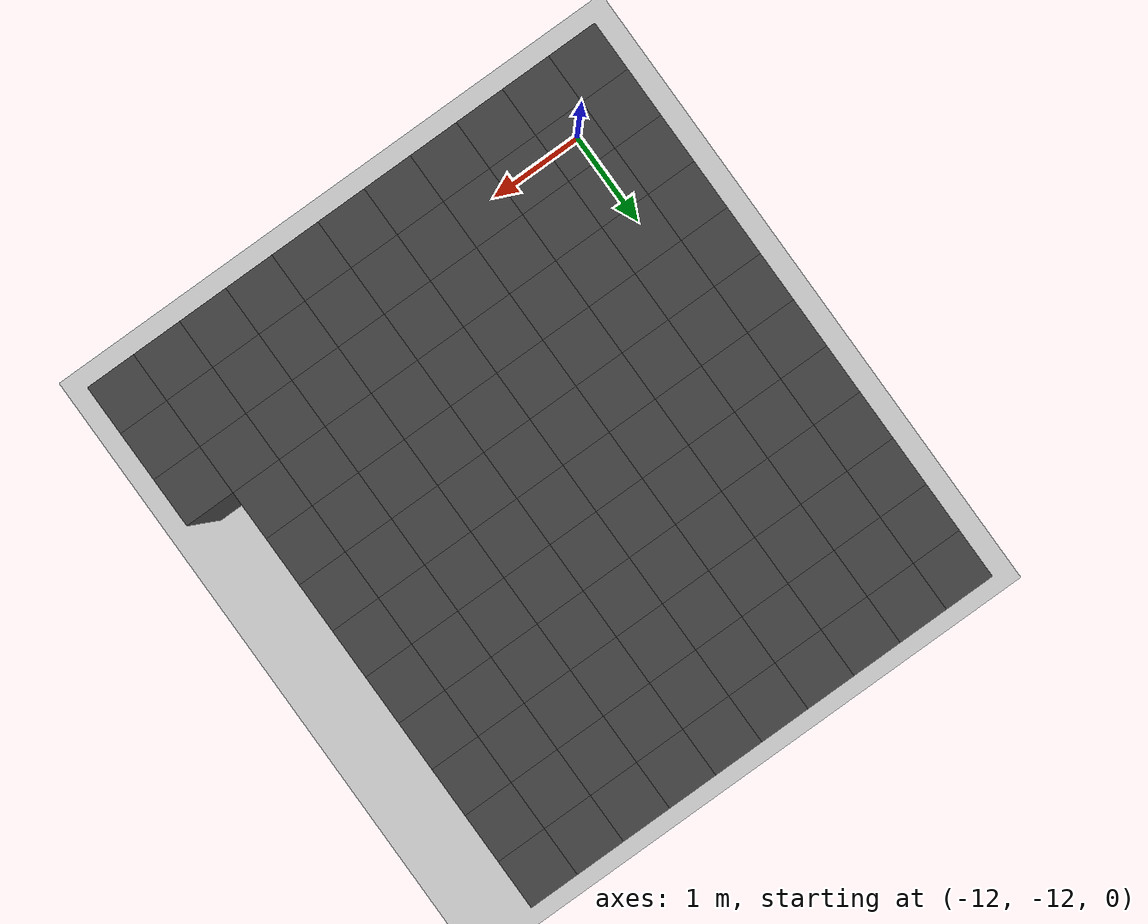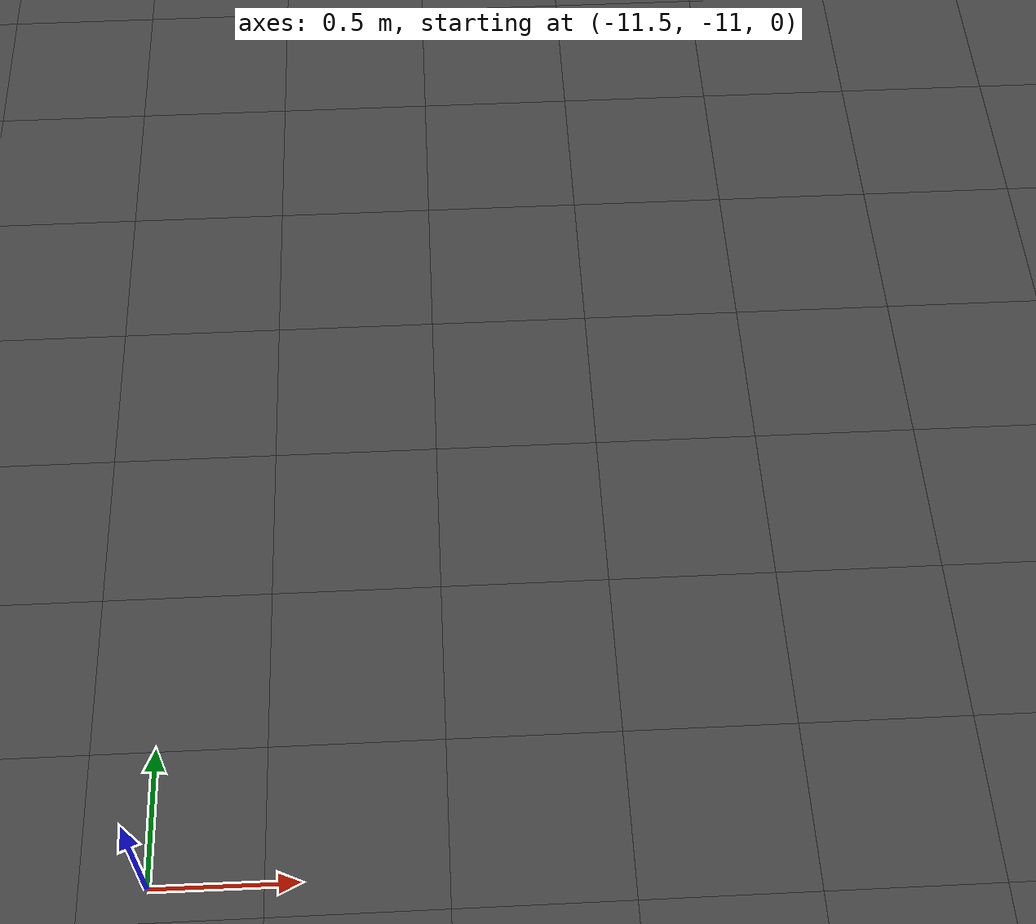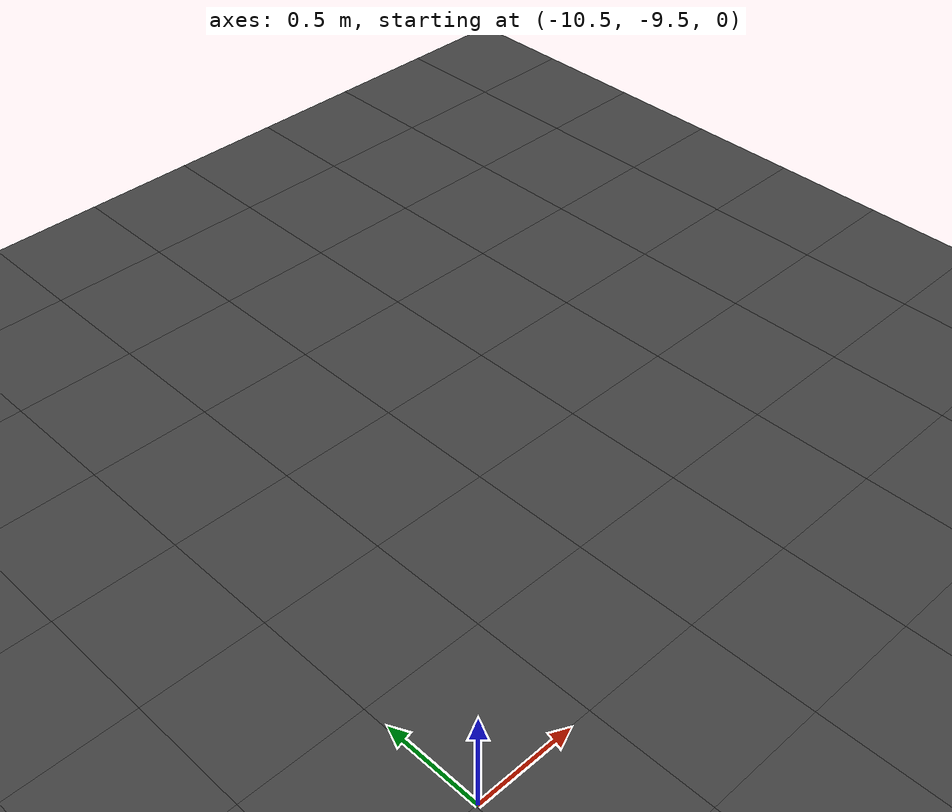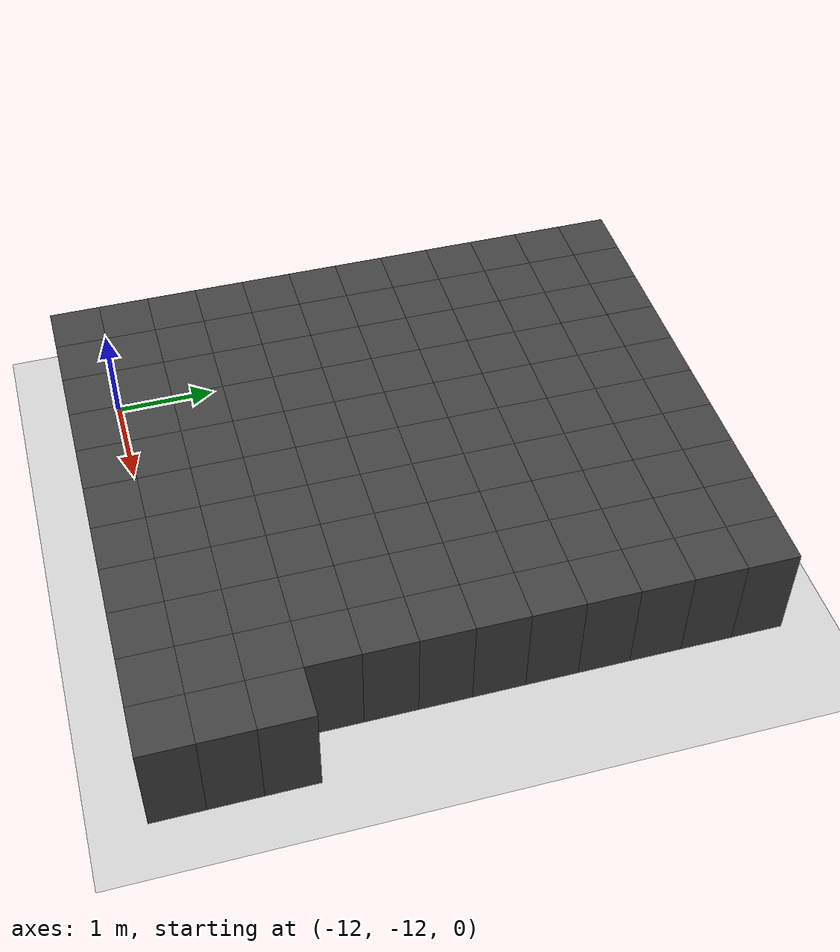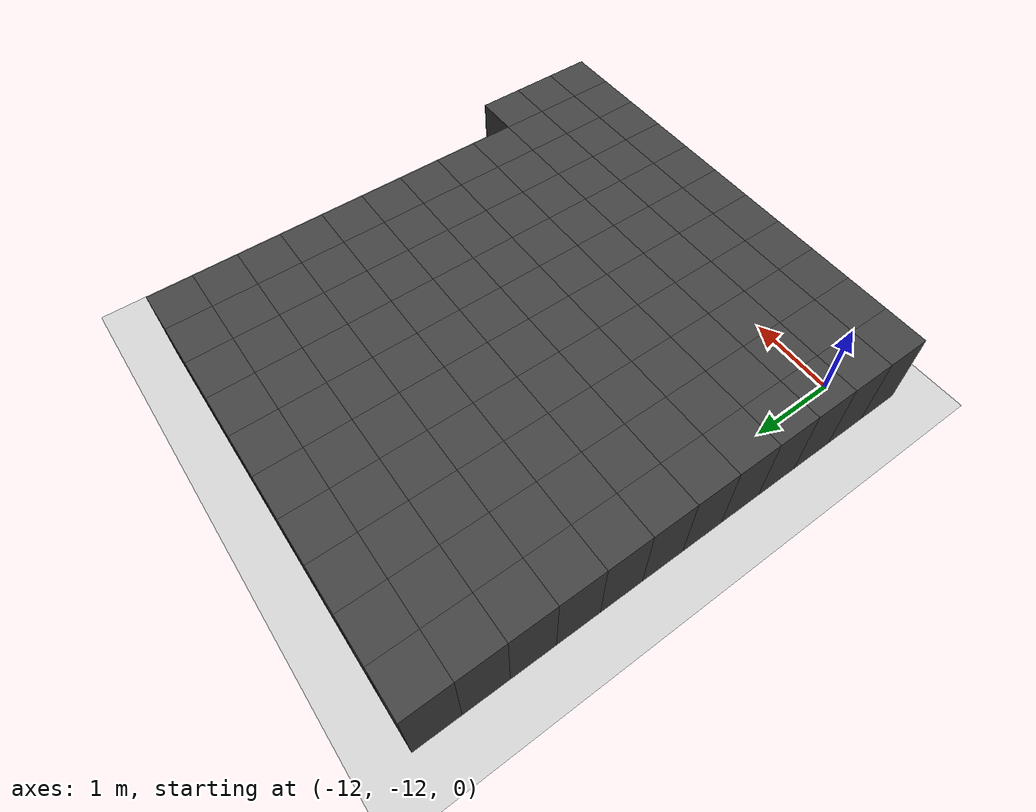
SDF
<sdf version="1.7">
 <world name="map_10726">
  <model name="ground_plane">
   <static>true</static>
   <link name="link">
    <collision name="collision">
     <geometry><plane><normal>0 0 1</normal><size>200 200</size></plane></geometry>
    </collision>
    <visual name="visual">
     <geometry><plane><normal>0 0 1</normal><size>200 200</size></plane></geometry>
     <material><ambient>0.8 0.8 0.8 1</ambient><diffuse>0.8 0.8 0.8 1</diffuse></material>
    </visual>
   </link>
  </model>
  <model name="maze_environment">
   <static>true</static>
   <link name="wall_1596">
    <pose>-12.250 -6.750 0.500 0 0 0</pose>
    <collision name="col"><geometry><box><size>0.5 0.5 1.0</size></box></geometry></collision>
    <visual name="vis">
     <geometry><box><size>0.5 0.5 1.0</size></box></geometry>
     <material><ambient>0.15 0.15 0.15 1</ambient><diffuse>0.25 0.25 0.25 1</diffuse></material>
    </visual>
   </link>
   <link name="wall_1597">
    <pose>-11.750 -6.750 0.500 0 0 0</pose>
    <collision name="col"><geometry><box><size>0.5 0.5 1.0</size></box></geometry></collision>
    <visual name="vis">
     <geometry><box><size>0.5 0.5 1.0</size></box></geometry>
     <material><ambient>0.15 0.15 0.15 1</ambient><diffuse>0.25 0.25 0.25 1</diffuse></material>
    </visual>
   </link>
   <link name="wall_1598">
    <pose>-11.250 -6.750 0.500 0 0 0</pose>
    <collision name="col"><geometry><box><size>0.5 0.5 1.0</size></box></geometry></collision>
    <visual name="vis">
     <geometry><box><size>0.5 0.5 1.0</size></box></geometry>
     <material><ambient>0.15 0.15 0.15 1</ambient><diffuse>0.25 0.25 0.25 1</diffuse></material>
    </visual>
   </link>
   <link name="wall_1599">
    <pose>-10.750 -6.750 0.500 0 0 0</pose>
    <collision name="col"><geometry><box><size>0.5 0.5 1.0</size></box></geometry></collision>
    <visual name="vis">
     <geometry><box><size>0.5 0.5 1.0</size></box></geometry>
     <material><ambient>0.15 0.15 0.15 1</ambient><diffuse>0.25 0.25 0.25 1</diffuse></material>
    </visual>
   </link>
   <link name="wall_1600">
    <pose>-10.250 -6.750 0.500 0 0 0</pose>
    <collision name="col"><geometry><box><size>0.5 0.5 1.0</size></box></geometry></collision>
    <visual name="vis">
     <geometry><box><size>0.5 0.5 1.0</size></box></geometry>
     <material><ambient>0.15 0.15 0.15 1</ambient><diffuse>0.25 0.25 0.25 1</diffuse></material>
    </visual>
   </link>
   <link name="wall_1601">
    <pose>-9.750 -6.750 0.500 0 0 0</pose>
    <collision name="col"><geometry><box><size>0.5 0.5 1.0</size></box></geometry></collision>
    <visual name="vis">
     <geometry><box><size>0.5 0.5 1.0</size></box></geometry>
     <material><ambient>0.15 0.15 0.15 1</ambient><diffuse>0.25 0.25 0.25 1</diffuse></material>
    </visual>
   </link>
   <link name="wall_1602">
    <pose>-9.250 -6.750 0.500 0 0 0</pose>
    <collision name="col"><geometry><box><size>0.5 0.5 1.0</size></box></geometry></collision>
    <visual name="vis">
     <geometry><box><size>0.5 0.5 1.0</size></box></geometry>
     <material><ambient>0.15 0.15 0.15 1</ambient><diffuse>0.25 0.25 0.25 1</diffuse></material>
    </visual>
   </link>
   <link name="wall_1603">
    <pose>-8.750 -6.750 0.500 0 0 0</pose>
    <collision name="col"><geometry><box><size>0.5 0.5 1.0</size></box></geometry></collision>
    <visual name="vis">
     <geometry><box><size>0.5 0.5 1.0</size></box></geometry>
     <material><ambient>0.15 0.15 0.15 1</ambient><diffuse>0.25 0.25 0.25 1</diffuse></material>
    </visual>
   </link>
   <link name="wall_1604">
    <pose>-8.250 -6.750 0.500 0 0 0</pose>
    <collision name="col"><geometry><box><size>0.5 0.5 1.0</size></box></geometry></collision>
    <visual name="vis">
     <geometry><box><size>0.5 0.5 1.0</size></box></geometry>
     <material><ambient>0.15 0.15 0.15 1</ambient><diffuse>0.25 0.25 0.25 1</diffuse></material>
    </visual>
   </link>
   <link name="wall_1605">
    <pose>-7.750 -6.750 0.500 0 0 0</pose>
    <collision name="col"><geometry><box><size>0.5 0.5 1.0</size></box></geometry></collision>
    <visual name="vis">
     <geometry><box><size>0.5 0.5 1.0</size></box></geometry>
     <material><ambient>0.15 0.15 0.15 1</ambient><diffuse>0.25 0.25 0.25 1</diffuse></material>
    </visual>
   </link>
   <link name="wall_1644">
    <pose>-12.250 -7.250 0.500 0 0 0</pose>
    <collision name="col"><geometry><box><size>0.5 0.5 1.0</size></box></geometry></collision>
    <visual name="vis">
     <geometry><box><size>0.5 0.5 1.0</size></box></geometry>
     <material><ambient>0.15 0.15 0.15 1</ambient><diffuse>0.25 0.25 0.25 1</diffuse></material>
    </visual>
   </link>
   <link name="wall_1645">
    <pose>-11.750 -7.250 0.500 0 0 0</pose>
    <collision name="col"><geometry><box><size>0.5 0.5 1.0</size></box></geometry></collision>
    <visual name="vis">
     <geometry><box><size>0.5 0.5 1.0</size></box></geometry>
     <material><ambient>0.15 0.15 0.15 1</ambient><diffuse>0.25 0.25 0.25 1</diffuse></material>
    </visual>
   </link>
   <link name="wall_1646">
    <pose>-11.250 -7.250 0.500 0 0 0</pose>
    <collision name="col"><geometry><box><size>0.5 0.5 1.0</size></box></geometry></collision>
    <visual name="vis">
     <geometry><box><size>0.5 0.5 1.0</size></box></geometry>
     <material><ambient>0.15 0.15 0.15 1</ambient><diffuse>0.25 0.25 0.25 1</diffuse></material>
    </visual>
   </link>
   <link name="wall_1647">
    <pose>-10.750 -7.250 0.500 0 0 0</pose>
    <collision name="col"><geometry><box><size>0.5 0.5 1.0</size></box></geometry></collision>
    <visual name="vis">
     <geometry><box><size>0.5 0.5 1.0</size></box></geometry>
     <material><ambient>0.15 0.15 0.15 1</ambient><diffuse>0.25 0.25 0.25 1</diffuse></material>
    </visual>
   </link>
   <link name="wall_1648">
    <pose>-10.250 -7.250 0.500 0 0 0</pose>
    <collision name="col"><geometry><box><size>0.5 0.5 1.0</size></box></geometry></collision>
    <visual name="vis">
     <geometry><box><size>0.5 0.5 1.0</size></box></geometry>
     <material><ambient>0.15 0.15 0.15 1</ambient><diffuse>0.25 0.25 0.25 1</diffuse></material>
    </visual>
   </link>
   <link name="wall_1649">
    <pose>-9.750 -7.250 0.500 0 0 0</pose>
    <collision name="col"><geometry><box><size>0.5 0.5 1.0</size></box></geometry></collision>
    <visual name="vis">
     <geometry><box><size>0.5 0.5 1.0</size></box></geometry>
     <material><ambient>0.15 0.15 0.15 1</ambient><diffuse>0.25 0.25 0.25 1</diffuse></material>
    </visual>
   </link>
   <link name="wall_1650">
    <pose>-9.250 -7.250 0.500 0 0 0</pose>
    <collision name="col"><geometry><box><size>0.5 0.5 1.0</size></box></geometry></collision>
    <visual name="vis">
     <geometry><box><size>0.5 0.5 1.0</size></box></geometry>
     <material><ambient>0.15 0.15 0.15 1</ambient><diffuse>0.25 0.25 0.25 1</diffuse></material>
    </visual>
   </link>
   <link name="wall_1651">
    <pose>-8.750 -7.250 0.500 0 0 0</pose>
    <collision name="col"><geometry><box><size>0.5 0.5 1.0</size></box></geometry></collision>
    <visual name="vis">
     <geometry><box><size>0.5 0.5 1.0</size></box></geometry>
     <material><ambient>0.15 0.15 0.15 1</ambient><diffuse>0.25 0.25 0.25 1</diffuse></material>
    </visual>
   </link>
   <link name="wall_1652">
    <pose>-8.250 -7.250 0.500 0 0 0</pose>
    <collision name="col"><geometry><box><size>0.5 0.5 1.0</size></box></geometry></collision>
    <visual name="vis">
     <geometry><box><size>0.5 0.5 1.0</size></box></geometry>
     <material><ambient>0.15 0.15 0.15 1</ambient><diffuse>0.25 0.25 0.25 1</diffuse></material>
    </visual>
   </link>
   <link name="wall_1653">
    <pose>-7.750 -7.250 0.500 0 0 0</pose>
    <collision name="col"><geometry><box><size>0.5 0.5 1.0</size></box></geometry></collision>
    <visual name="vis">
     <geometry><box><size>0.5 0.5 1.0</size></box></geometry>
     <material><ambient>0.15 0.15 0.15 1</ambient><diffuse>0.25 0.25 0.25 1</diffuse></material>
    </visual>
   </link>
   <link name="wall_1681">
    <pose>-12.250 -7.750 0.500 0 0 0</pose>
    <collision name="col"><geometry><box><size>0.5 0.5 1.0</size></box></geometry></collision>
    <visual name="vis">
     <geometry><box><size>0.5 0.5 1.0</size></box></geometry>
     <material><ambient>0.15 0.15 0.15 1</ambient><diffuse>0.25 0.25 0.25 1</diffuse></material>
    </visual>
   </link>
   <link name="wall_1682">
    <pose>-11.750 -7.750 0.500 0 0 0</pose>
    <collision name="col"><geometry><box><size>0.5 0.5 1.0</size></box></geometry></collision>
    <visual name="vis">
     <geometry><box><size>0.5 0.5 1.0</size></box></geometry>
     <material><ambient>0.15 0.15 0.15 1</ambient><diffuse>0.25 0.25 0.25 1</diffuse></material>
    </visual>
   </link>
   <link name="wall_1683">
    <pose>-11.250 -7.750 0.500 0 0 0</pose>
    <collision name="col"><geometry><box><size>0.5 0.5 1.0</size></box></geometry></collision>
    <visual name="vis">
     <geometry><box><size>0.5 0.5 1.0</size></box></geometry>
     <material><ambient>0.15 0.15 0.15 1</ambient><diffuse>0.25 0.25 0.25 1</diffuse></material>
    </visual>
   </link>
   <link name="wall_1684">
    <pose>-10.750 -7.750 0.500 0 0 0</pose>
    <collision name="col"><geometry><box><size>0.5 0.5 1.0</size></box></geometry></collision>
    <visual name="vis">
     <geometry><box><size>0.5 0.5 1.0</size></box></geometry>
     <material><ambient>0.15 0.15 0.15 1</ambient><diffuse>0.25 0.25 0.25 1</diffuse></material>
    </visual>
   </link>
   <link name="wall_1685">
    <pose>-10.250 -7.750 0.500 0 0 0</pose>
    <collision name="col"><geometry><box><size>0.5 0.5 1.0</size></box></geometry></collision>
    <visual name="vis">
     <geometry><box><size>0.5 0.5 1.0</size></box></geometry>
     <material><ambient>0.15 0.15 0.15 1</ambient><diffuse>0.25 0.25 0.25 1</diffuse></material>
    </visual>
   </link>
   <link name="wall_1686">
    <pose>-9.750 -7.750 0.500 0 0 0</pose>
    <collision name="col"><geometry><box><size>0.5 0.5 1.0</size></box></geometry></collision>
    <visual name="vis">
     <geometry><box><size>0.5 0.5 1.0</size></box></geometry>
     <material><ambient>0.15 0.15 0.15 1</ambient><diffuse>0.25 0.25 0.25 1</diffuse></material>
    </visual>
   </link>
   <link name="wall_1687">
    <pose>-9.250 -7.750 0.500 0 0 0</pose>
    <collision name="col"><geometry><box><size>0.5 0.5 1.0</size></box></geometry></collision>
    <visual name="vis">
     <geometry><box><size>0.5 0.5 1.0</size></box></geometry>
     <material><ambient>0.15 0.15 0.15 1</ambient><diffuse>0.25 0.25 0.25 1</diffuse></material>
    </visual>
   </link>
   <link name="wall_1688">
    <pose>-8.750 -7.750 0.500 0 0 0</pose>
    <collision name="col"><geometry><box><size>0.5 0.5 1.0</size></box></geometry></collision>
    <visual name="vis">
     <geometry><box><size>0.5 0.5 1.0</size></box></geometry>
     <material><ambient>0.15 0.15 0.15 1</ambient><diffuse>0.25 0.25 0.25 1</diffuse></material>
    </visual>
   </link>
   <link name="wall_1689">
    <pose>-8.250 -7.750 0.500 0 0 0</pose>
    <collision name="col"><geometry><box><size>0.5 0.5 1.0</size></box></geometry></collision>
    <visual name="vis">
     <geometry><box><size>0.5 0.5 1.0</size></box></geometry>
     <material><ambient>0.15 0.15 0.15 1</ambient><diffuse>0.25 0.25 0.25 1</diffuse></material>
    </visual>
   </link>
   <link name="wall_1690">
    <pose>-7.750 -7.750 0.500 0 0 0</pose>
    <collision name="col"><geometry><box><size>0.5 0.5 1.0</size></box></geometry></collision>
    <visual name="vis">
     <geometry><box><size>0.5 0.5 1.0</size></box></geometry>
     <material><ambient>0.15 0.15 0.15 1</ambient><diffuse>0.25 0.25 0.25 1</diffuse></material>
    </visual>
   </link>
   <link name="wall_1718">
    <pose>-12.250 -8.250 0.500 0 0 0</pose>
    <collision name="col"><geometry><box><size>0.5 0.5 1.0</size></box></geometry></collision>
    <visual name="vis">
     <geometry><box><size>0.5 0.5 1.0</size></box></geometry>
     <material><ambient>0.15 0.15 0.15 1</ambient><diffuse>0.25 0.25 0.25 1</diffuse></material>
    </visual>
   </link>
   <link name="wall_1719">
    <pose>-11.750 -8.250 0.500 0 0 0</pose>
    <collision name="col"><geometry><box><size>0.5 0.5 1.0</size></box></geometry></collision>
    <visual name="vis">
     <geometry><box><size>0.5 0.5 1.0</size></box></geometry>
     <material><ambient>0.15 0.15 0.15 1</ambient><diffuse>0.25 0.25 0.25 1</diffuse></material>
    </visual>
   </link>
   <link name="wall_1720">
    <pose>-11.250 -8.250 0.500 0 0 0</pose>
    <collision name="col"><geometry><box><size>0.5 0.5 1.0</size></box></geometry></collision>
    <visual name="vis">
     <geometry><box><size>0.5 0.5 1.0</size></box></geometry>
     <material><ambient>0.15 0.15 0.15 1</ambient><diffuse>0.25 0.25 0.25 1</diffuse></material>
    </visual>
   </link>
   <link name="wall_1721">
    <pose>-10.750 -8.250 0.500 0 0 0</pose>
    <collision name="col"><geometry><box><size>0.5 0.5 1.0</size></box></geometry></collision>
    <visual name="vis">
     <geometry><box><size>0.5 0.5 1.0</size></box></geometry>
     <material><ambient>0.15 0.15 0.15 1</ambient><diffuse>0.25 0.25 0.25 1</diffuse></material>
    </visual>
   </link>
   <link name="wall_1722">
    <pose>-10.250 -8.250 0.500 0 0 0</pose>
    <collision name="col"><geometry><box><size>0.5 0.5 1.0</size></box></geometry></collision>
    <visual name="vis">
     <geometry><box><size>0.5 0.5 1.0</size></box></geometry>
     <material><ambient>0.15 0.15 0.15 1</ambient><diffuse>0.25 0.25 0.25 1</diffuse></material>
    </visual>
   </link>
   <link name="wall_1723">
    <pose>-9.750 -8.250 0.500 0 0 0</pose>
    <collision name="col"><geometry><box><size>0.5 0.5 1.0</size></box></geometry></collision>
    <visual name="vis">
     <geometry><box><size>0.5 0.5 1.0</size></box></geometry>
     <material><ambient>0.15 0.15 0.15 1</ambient><diffuse>0.25 0.25 0.25 1</diffuse></material>
    </visual>
   </link>
   <link name="wall_1724">
    <pose>-9.250 -8.250 0.500 0 0 0</pose>
    <collision name="col"><geometry><box><size>0.5 0.5 1.0</size></box></geometry></collision>
    <visual name="vis">
     <geometry><box><size>0.5 0.5 1.0</size></box></geometry>
     <material><ambient>0.15 0.15 0.15 1</ambient><diffuse>0.25 0.25 0.25 1</diffuse></material>
    </visual>
   </link>
   <link name="wall_1725">
    <pose>-8.750 -8.250 0.500 0 0 0</pose>
    <collision name="col"><geometry><box><size>0.5 0.5 1.0</size></box></geometry></collision>
    <visual name="vis">
     <geometry><box><size>0.5 0.5 1.0</size></box></geometry>
     <material><ambient>0.15 0.15 0.15 1</ambient><diffuse>0.25 0.25 0.25 1</diffuse></material>
    </visual>
   </link>
   <link name="wall_1726">
    <pose>-8.250 -8.250 0.500 0 0 0</pose>
    <collision name="col"><geometry><box><size>0.5 0.5 1.0</size></box></geometry></collision>
    <visual name="vis">
     <geometry><box><size>0.5 0.5 1.0</size></box></geometry>
     <material><ambient>0.15 0.15 0.15 1</ambient><diffuse>0.25 0.25 0.25 1</diffuse></material>
    </visual>
   </link>
   <link name="wall_1727">
    <pose>-7.750 -8.250 0.500 0 0 0</pose>
    <collision name="col"><geometry><box><size>0.5 0.5 1.0</size></box></geometry></collision>
    <visual name="vis">
     <geometry><box><size>0.5 0.5 1.0</size></box></geometry>
     <material><ambient>0.15 0.15 0.15 1</ambient><diffuse>0.25 0.25 0.25 1</diffuse></material>
    </visual>
   </link>
   <link name="wall_1755">
    <pose>-12.250 -8.750 0.500 0 0 0</pose>
    <collision name="col"><geometry><box><size>0.5 0.5 1.0</size></box></geometry></collision>
    <visual name="vis">
     <geometry><box><size>0.5 0.5 1.0</size></box></geometry>
     <material><ambient>0.15 0.15 0.15 1</ambient><diffuse>0.25 0.25 0.25 1</diffuse></material>
    </visual>
   </link>
   <link name="wall_1756">
    <pose>-11.750 -8.750 0.500 0 0 0</pose>
    <collision name="col"><geometry><box><size>0.5 0.5 1.0</size></box></geometry></collision>
    <visual name="vis">
     <geometry><box><size>0.5 0.5 1.0</size></box></geometry>
     <material><ambient>0.15 0.15 0.15 1</ambient><diffuse>0.25 0.25 0.25 1</diffuse></material>
    </visual>
   </link>
   <link name="wall_1757">
    <pose>-11.250 -8.750 0.500 0 0 0</pose>
    <collision name="col"><geometry><box><size>0.5 0.5 1.0</size></box></geometry></collision>
    <visual name="vis">
     <geometry><box><size>0.5 0.5 1.0</size></box></geometry>
     <material><ambient>0.15 0.15 0.15 1</ambient><diffuse>0.25 0.25 0.25 1</diffuse></material>
    </visual>
   </link>
   <link name="wall_1758">
    <pose>-10.750 -8.750 0.500 0 0 0</pose>
    <collision name="col"><geometry><box><size>0.5 0.5 1.0</size></box></geometry></collision>
    <visual name="vis">
     <geometry><box><size>0.5 0.5 1.0</size></box></geometry>
     <material><ambient>0.15 0.15 0.15 1</ambient><diffuse>0.25 0.25 0.25 1</diffuse></material>
    </visual>
   </link>
   <link name="wall_1759">
    <pose>-10.250 -8.750 0.500 0 0 0</pose>
    <collision name="col"><geometry><box><size>0.5 0.5 1.0</size></box></geometry></collision>
    <visual name="vis">
     <geometry><box><size>0.5 0.5 1.0</size></box></geometry>
     <material><ambient>0.15 0.15 0.15 1</ambient><diffuse>0.25 0.25 0.25 1</diffuse></material>
    </visual>
   </link>
   <link name="wall_1760">
    <pose>-9.750 -8.750 0.500 0 0 0</pose>
    <collision name="col"><geometry><box><size>0.5 0.5 1.0</size></box></geometry></collision>
    <visual name="vis">
     <geometry><box><size>0.5 0.5 1.0</size></box></geometry>
     <material><ambient>0.15 0.15 0.15 1</ambient><diffuse>0.25 0.25 0.25 1</diffuse></material>
    </visual>
   </link>
   <link name="wall_1761">
    <pose>-9.250 -8.750 0.500 0 0 0</pose>
    <collision name="col"><geometry><box><size>0.5 0.5 1.0</size></box></geometry></collision>
    <visual name="vis">
     <geometry><box><size>0.5 0.5 1.0</size></box></geometry>
     <material><ambient>0.15 0.15 0.15 1</ambient><diffuse>0.25 0.25 0.25 1</diffuse></material>
    </visual>
   </link>
   <link name="wall_1762">
    <pose>-8.750 -8.750 0.500 0 0 0</pose>
    <collision name="col"><geometry><box><size>0.5 0.5 1.0</size></box></geometry></collision>
    <visual name="vis">
     <geometry><box><size>0.5 0.5 1.0</size></box></geometry>
     <material><ambient>0.15 0.15 0.15 1</ambient><diffuse>0.25 0.25 0.25 1</diffuse></material>
    </visual>
   </link>
   <link name="wall_1763">
    <pose>-8.250 -8.750 0.500 0 0 0</pose>
    <collision name="col"><geometry><box><size>0.5 0.5 1.0</size></box></geometry></collision>
    <visual name="vis">
     <geometry><box><size>0.5 0.5 1.0</size></box></geometry>
     <material><ambient>0.15 0.15 0.15 1</ambient><diffuse>0.25 0.25 0.25 1</diffuse></material>
    </visual>
   </link>
   <link name="wall_1764">
    <pose>-7.750 -8.750 0.500 0 0 0</pose>
    <collision name="col"><geometry><box><size>0.5 0.5 1.0</size></box></geometry></collision>
    <visual name="vis">
     <geometry><box><size>0.5 0.5 1.0</size></box></geometry>
     <material><ambient>0.15 0.15 0.15 1</ambient><diffuse>0.25 0.25 0.25 1</diffuse></material>
    </visual>
   </link>
   <link name="wall_1791">
    <pose>-12.250 -9.250 0.500 0 0 0</pose>
    <collision name="col"><geometry><box><size>0.5 0.5 1.0</size></box></geometry></collision>
    <visual name="vis">
     <geometry><box><size>0.5 0.5 1.0</size></box></geometry>
     <material><ambient>0.15 0.15 0.15 1</ambient><diffuse>0.25 0.25 0.25 1</diffuse></material>
    </visual>
   </link>
   <link name="wall_1792">
    <pose>-11.750 -9.250 0.500 0 0 0</pose>
    <collision name="col"><geometry><box><size>0.5 0.5 1.0</size></box></geometry></collision>
    <visual name="vis">
     <geometry><box><size>0.5 0.5 1.0</size></box></geometry>
     <material><ambient>0.15 0.15 0.15 1</ambient><diffuse>0.25 0.25 0.25 1</diffuse></material>
    </visual>
   </link>
   <link name="wall_1793">
    <pose>-11.250 -9.250 0.500 0 0 0</pose>
    <collision name="col"><geometry><box><size>0.5 0.5 1.0</size></box></geometry></collision>
    <visual name="vis">
     <geometry><box><size>0.5 0.5 1.0</size></box></geometry>
     <material><ambient>0.15 0.15 0.15 1</ambient><diffuse>0.25 0.25 0.25 1</diffuse></material>
    </visual>
   </link>
   <link name="wall_1794">
    <pose>-10.750 -9.250 0.500 0 0 0</pose>
    <collision name="col"><geometry><box><size>0.5 0.5 1.0</size></box></geometry></collision>
    <visual name="vis">
     <geometry><box><size>0.5 0.5 1.0</size></box></geometry>
     <material><ambient>0.15 0.15 0.15 1</ambient><diffuse>0.25 0.25 0.25 1</diffuse></material>
    </visual>
   </link>
   <link name="wall_1795">
    <pose>-10.250 -9.250 0.500 0 0 0</pose>
    <collision name="col"><geometry><box><size>0.5 0.5 1.0</size></box></geometry></collision>
    <visual name="vis">
     <geometry><box><size>0.5 0.5 1.0</size></box></geometry>
     <material><ambient>0.15 0.15 0.15 1</ambient><diffuse>0.25 0.25 0.25 1</diffuse></material>
    </visual>
   </link>
   <link name="wall_1796">
    <pose>-9.750 -9.250 0.500 0 0 0</pose>
    <collision name="col"><geometry><box><size>0.5 0.5 1.0</size></box></geometry></collision>
    <visual name="vis">
     <geometry><box><size>0.5 0.5 1.0</size></box></geometry>
     <material><ambient>0.15 0.15 0.15 1</ambient><diffuse>0.25 0.25 0.25 1</diffuse></material>
    </visual>
   </link>
   <link name="wall_1797">
    <pose>-9.250 -9.250 0.500 0 0 0</pose>
    <collision name="col"><geometry><box><size>0.5 0.5 1.0</size></box></geometry></collision>
    <visual name="vis">
     <geometry><box><size>0.5 0.5 1.0</size></box></geometry>
     <material><ambient>0.15 0.15 0.15 1</ambient><diffuse>0.25 0.25 0.25 1</diffuse></material>
    </visual>
   </link>
   <link name="wall_1798">
    <pose>-8.750 -9.250 0.500 0 0 0</pose>
    <collision name="col"><geometry><box><size>0.5 0.5 1.0</size></box></geometry></collision>
    <visual name="vis">
     <geometry><box><size>0.5 0.5 1.0</size></box></geometry>
     <material><ambient>0.15 0.15 0.15 1</ambient><diffuse>0.25 0.25 0.25 1</diffuse></material>
    </visual>
   </link>
   <link name="wall_1799">
    <pose>-8.250 -9.250 0.500 0 0 0</pose>
    <collision name="col"><geometry><box><size>0.5 0.5 1.0</size></box></geometry></collision>
    <visual name="vis">
     <geometry><box><size>0.5 0.5 1.0</size></box></geometry>
     <material><ambient>0.15 0.15 0.15 1</ambient><diffuse>0.25 0.25 0.25 1</diffuse></material>
    </visual>
   </link>
   <link name="wall_1800">
    <pose>-7.750 -9.250 0.500 0 0 0</pose>
    <collision name="col"><geometry><box><size>0.5 0.5 1.0</size></box></geometry></collision>
    <visual name="vis">
     <geometry><box><size>0.5 0.5 1.0</size></box></geometry>
     <material><ambient>0.15 0.15 0.15 1</ambient><diffuse>0.25 0.25 0.25 1</diffuse></material>
    </visual>
   </link>
   <link name="wall_1829">
    <pose>-12.250 -9.750 0.500 0 0 0</pose>
    <collision name="col"><geometry><box><size>0.5 0.5 1.0</size></box></geometry></collision>
    <visual name="vis">
     <geometry><box><size>0.5 0.5 1.0</size></box></geometry>
     <material><ambient>0.15 0.15 0.15 1</ambient><diffuse>0.25 0.25 0.25 1</diffuse></material>
    </visual>
   </link>
   <link name="wall_1830">
    <pose>-11.750 -9.750 0.500 0 0 0</pose>
    <collision name="col"><geometry><box><size>0.5 0.5 1.0</size></box></geometry></collision>
    <visual name="vis">
     <geometry><box><size>0.5 0.5 1.0</size></box></geometry>
     <material><ambient>0.15 0.15 0.15 1</ambient><diffuse>0.25 0.25 0.25 1</diffuse></material>
    </visual>
   </link>
   <link name="wall_1831">
    <pose>-11.250 -9.750 0.500 0 0 0</pose>
    <collision name="col"><geometry><box><size>0.5 0.5 1.0</size></box></geometry></collision>
    <visual name="vis">
     <geometry><box><size>0.5 0.5 1.0</size></box></geometry>
     <material><ambient>0.15 0.15 0.15 1</ambient><diffuse>0.25 0.25 0.25 1</diffuse></material>
    </visual>
   </link>
   <link name="wall_1832">
    <pose>-10.750 -9.750 0.500 0 0 0</pose>
    <collision name="col"><geometry><box><size>0.5 0.5 1.0</size></box></geometry></collision>
    <visual name="vis">
     <geometry><box><size>0.5 0.5 1.0</size></box></geometry>
     <material><ambient>0.15 0.15 0.15 1</ambient><diffuse>0.25 0.25 0.25 1</diffuse></material>
    </visual>
   </link>
   <link name="wall_1833">
    <pose>-10.250 -9.750 0.500 0 0 0</pose>
    <collision name="col"><geometry><box><size>0.5 0.5 1.0</size></box></geometry></collision>
    <visual name="vis">
     <geometry><box><size>0.5 0.5 1.0</size></box></geometry>
     <material><ambient>0.15 0.15 0.15 1</ambient><diffuse>0.25 0.25 0.25 1</diffuse></material>
    </visual>
   </link>
   <link name="wall_1834">
    <pose>-9.750 -9.750 0.500 0 0 0</pose>
    <collision name="col"><geometry><box><size>0.5 0.5 1.0</size></box></geometry></collision>
    <visual name="vis">
     <geometry><box><size>0.5 0.5 1.0</size></box></geometry>
     <material><ambient>0.15 0.15 0.15 1</ambient><diffuse>0.25 0.25 0.25 1</diffuse></material>
    </visual>
   </link>
   <link name="wall_1835">
    <pose>-9.250 -9.750 0.500 0 0 0</pose>
    <collision name="col"><geometry><box><size>0.5 0.5 1.0</size></box></geometry></collision>
    <visual name="vis">
     <geometry><box><size>0.5 0.5 1.0</size></box></geometry>
     <material><ambient>0.15 0.15 0.15 1</ambient><diffuse>0.25 0.25 0.25 1</diffuse></material>
    </visual>
   </link>
   <link name="wall_1836">
    <pose>-8.750 -9.750 0.500 0 0 0</pose>
    <collision name="col"><geometry><box><size>0.5 0.5 1.0</size></box></geometry></collision>
    <visual name="vis">
     <geometry><box><size>0.5 0.5 1.0</size></box></geometry>
     <material><ambient>0.15 0.15 0.15 1</ambient><diffuse>0.25 0.25 0.25 1</diffuse></material>
    </visual>
   </link>
   <link name="wall_1837">
    <pose>-8.250 -9.750 0.500 0 0 0</pose>
    <collision name="col"><geometry><box><size>0.5 0.5 1.0</size></box></geometry></collision>
    <visual name="vis">
     <geometry><box><size>0.5 0.5 1.0</size></box></geometry>
     <material><ambient>0.15 0.15 0.15 1</ambient><diffuse>0.25 0.25 0.25 1</diffuse></material>
    </visual>
   </link>
   <link name="wall_1838">
    <pose>-7.750 -9.750 0.500 0 0 0</pose>
    <collision name="col"><geometry><box><size>0.5 0.5 1.0</size></box></geometry></collision>
    <visual name="vis">
     <geometry><box><size>0.5 0.5 1.0</size></box></geometry>
     <material><ambient>0.15 0.15 0.15 1</ambient><diffuse>0.25 0.25 0.25 1</diffuse></material>
    </visual>
   </link>
   <link name="wall_1867">
    <pose>-12.250 -10.250 0.500 0 0 0</pose>
    <collision name="col"><geometry><box><size>0.5 0.5 1.0</size></box></geometry></collision>
    <visual name="vis">
     <geometry><box><size>0.5 0.5 1.0</size></box></geometry>
     <material><ambient>0.15 0.15 0.15 1</ambient><diffuse>0.25 0.25 0.25 1</diffuse></material>
    </visual>
   </link>
   <link name="wall_1868">
    <pose>-11.750 -10.250 0.500 0 0 0</pose>
    <collision name="col"><geometry><box><size>0.5 0.5 1.0</size></box></geometry></collision>
    <visual name="vis">
     <geometry><box><size>0.5 0.5 1.0</size></box></geometry>
     <material><ambient>0.15 0.15 0.15 1</ambient><diffuse>0.25 0.25 0.25 1</diffuse></material>
    </visual>
   </link>
   <link name="wall_1869">
    <pose>-11.250 -10.250 0.500 0 0 0</pose>
    <collision name="col"><geometry><box><size>0.5 0.5 1.0</size></box></geometry></collision>
    <visual name="vis">
     <geometry><box><size>0.5 0.5 1.0</size></box></geometry>
     <material><ambient>0.15 0.15 0.15 1</ambient><diffuse>0.25 0.25 0.25 1</diffuse></material>
    </visual>
   </link>
   <link name="wall_1870">
    <pose>-10.750 -10.250 0.500 0 0 0</pose>
    <collision name="col"><geometry><box><size>0.5 0.5 1.0</size></box></geometry></collision>
    <visual name="vis">
     <geometry><box><size>0.5 0.5 1.0</size></box></geometry>
     <material><ambient>0.15 0.15 0.15 1</ambient><diffuse>0.25 0.25 0.25 1</diffuse></material>
    </visual>
   </link>
   <link name="wall_1871">
    <pose>-10.250 -10.250 0.500 0 0 0</pose>
    <collision name="col"><geometry><box><size>0.5 0.5 1.0</size></box></geometry></collision>
    <visual name="vis">
     <geometry><box><size>0.5 0.5 1.0</size></box></geometry>
     <material><ambient>0.15 0.15 0.15 1</ambient><diffuse>0.25 0.25 0.25 1</diffuse></material>
    </visual>
   </link>
   <link name="wall_1872">
    <pose>-9.750 -10.250 0.500 0 0 0</pose>
    <collision name="col"><geometry><box><size>0.5 0.5 1.0</size></box></geometry></collision>
    <visual name="vis">
     <geometry><box><size>0.5 0.5 1.0</size></box></geometry>
     <material><ambient>0.15 0.15 0.15 1</ambient><diffuse>0.25 0.25 0.25 1</diffuse></material>
    </visual>
   </link>
   <link name="wall_1873">
    <pose>-9.250 -10.250 0.500 0 0 0</pose>
    <collision name="col"><geometry><box><size>0.5 0.5 1.0</size></box></geometry></collision>
    <visual name="vis">
     <geometry><box><size>0.5 0.5 1.0</size></box></geometry>
     <material><ambient>0.15 0.15 0.15 1</ambient><diffuse>0.25 0.25 0.25 1</diffuse></material>
    </visual>
   </link>
   <link name="wall_1874">
    <pose>-8.750 -10.250 0.500 0 0 0</pose>
    <collision name="col"><geometry><box><size>0.5 0.5 1.0</size></box></geometry></collision>
    <visual name="vis">
     <geometry><box><size>0.5 0.5 1.0</size></box></geometry>
     <material><ambient>0.15 0.15 0.15 1</ambient><diffuse>0.25 0.25 0.25 1</diffuse></material>
    </visual>
   </link>
   <link name="wall_1875">
    <pose>-8.250 -10.250 0.500 0 0 0</pose>
    <collision name="col"><geometry><box><size>0.5 0.5 1.0</size></box></geometry></collision>
    <visual name="vis">
     <geometry><box><size>0.5 0.5 1.0</size></box></geometry>
     <material><ambient>0.15 0.15 0.15 1</ambient><diffuse>0.25 0.25 0.25 1</diffuse></material>
    </visual>
   </link>
   <link name="wall_1876">
    <pose>-7.750 -10.250 0.500 0 0 0</pose>
    <collision name="col"><geometry><box><size>0.5 0.5 1.0</size></box></geometry></collision>
    <visual name="vis">
     <geometry><box><size>0.5 0.5 1.0</size></box></geometry>
     <material><ambient>0.15 0.15 0.15 1</ambient><diffuse>0.25 0.25 0.25 1</diffuse></material>
    </visual>
   </link>
   <link name="wall_1913">
    <pose>-12.250 -10.750 0.500 0 0 0</pose>
    <collision name="col"><geometry><box><size>0.5 0.5 1.0</size></box></geometry></collision>
    <visual name="vis">
     <geometry><box><size>0.5 0.5 1.0</size></box></geometry>
     <material><ambient>0.15 0.15 0.15 1</ambient><diffuse>0.25 0.25 0.25 1</diffuse></material>
    </visual>
   </link>
   <link name="wall_1914">
    <pose>-11.750 -10.750 0.500 0 0 0</pose>
    <collision name="col"><geometry><box><size>0.5 0.5 1.0</size></box></geometry></collision>
    <visual name="vis">
     <geometry><box><size>0.5 0.5 1.0</size></box></geometry>
     <material><ambient>0.15 0.15 0.15 1</ambient><diffuse>0.25 0.25 0.25 1</diffuse></material>
    </visual>
   </link>
   <link name="wall_1915">
    <pose>-11.250 -10.750 0.500 0 0 0</pose>
    <collision name="col"><geometry><box><size>0.5 0.5 1.0</size></box></geometry></collision>
    <visual name="vis">
     <geometry><box><size>0.5 0.5 1.0</size></box></geometry>
     <material><ambient>0.15 0.15 0.15 1</ambient><diffuse>0.25 0.25 0.25 1</diffuse></material>
    </visual>
   </link>
   <link name="wall_1916">
    <pose>-10.750 -10.750 0.500 0 0 0</pose>
    <collision name="col"><geometry><box><size>0.5 0.5 1.0</size></box></geometry></collision>
    <visual name="vis">
     <geometry><box><size>0.5 0.5 1.0</size></box></geometry>
     <material><ambient>0.15 0.15 0.15 1</ambient><diffuse>0.25 0.25 0.25 1</diffuse></material>
    </visual>
   </link>
   <link name="wall_1917">
    <pose>-10.250 -10.750 0.500 0 0 0</pose>
    <collision name="col"><geometry><box><size>0.5 0.5 1.0</size></box></geometry></collision>
    <visual name="vis">
     <geometry><box><size>0.5 0.5 1.0</size></box></geometry>
     <material><ambient>0.15 0.15 0.15 1</ambient><diffuse>0.25 0.25 0.25 1</diffuse></material>
    </visual>
   </link>
   <link name="wall_1918">
    <pose>-9.750 -10.750 0.500 0 0 0</pose>
    <collision name="col"><geometry><box><size>0.5 0.5 1.0</size></box></geometry></collision>
    <visual name="vis">
     <geometry><box><size>0.5 0.5 1.0</size></box></geometry>
     <material><ambient>0.15 0.15 0.15 1</ambient><diffuse>0.25 0.25 0.25 1</diffuse></material>
    </visual>
   </link>
   <link name="wall_1919">
    <pose>-9.250 -10.750 0.500 0 0 0</pose>
    <collision name="col"><geometry><box><size>0.5 0.5 1.0</size></box></geometry></collision>
    <visual name="vis">
     <geometry><box><size>0.5 0.5 1.0</size></box></geometry>
     <material><ambient>0.15 0.15 0.15 1</ambient><diffuse>0.25 0.25 0.25 1</diffuse></material>
    </visual>
   </link>
   <link name="wall_1920">
    <pose>-8.750 -10.750 0.500 0 0 0</pose>
    <collision name="col"><geometry><box><size>0.5 0.5 1.0</size></box></geometry></collision>
    <visual name="vis">
     <geometry><box><size>0.5 0.5 1.0</size></box></geometry>
     <material><ambient>0.15 0.15 0.15 1</ambient><diffuse>0.25 0.25 0.25 1</diffuse></material>
    </visual>
   </link>
   <link name="wall_1921">
    <pose>-8.250 -10.750 0.500 0 0 0</pose>
    <collision name="col"><geometry><box><size>0.5 0.5 1.0</size></box></geometry></collision>
    <visual name="vis">
     <geometry><box><size>0.5 0.5 1.0</size></box></geometry>
     <material><ambient>0.15 0.15 0.15 1</ambient><diffuse>0.25 0.25 0.25 1</diffuse></material>
    </visual>
   </link>
   <link name="wall_1922">
    <pose>-7.750 -10.750 0.500 0 0 0</pose>
    <collision name="col"><geometry><box><size>0.5 0.5 1.0</size></box></geometry></collision>
    <visual name="vis">
     <geometry><box><size>0.5 0.5 1.0</size></box></geometry>
     <material><ambient>0.15 0.15 0.15 1</ambient><diffuse>0.25 0.25 0.25 1</diffuse></material>
    </visual>
   </link>
   <link name="wall_1959">
    <pose>-12.250 -11.250 0.500 0 0 0</pose>
    <collision name="col"><geometry><box><size>0.5 0.5 1.0</size></box></geometry></collision>
    <visual name="vis">
     <geometry><box><size>0.5 0.5 1.0</size></box></geometry>
     <material><ambient>0.15 0.15 0.15 1</ambient><diffuse>0.25 0.25 0.25 1</diffuse></material>
    </visual>
   </link>
   <link name="wall_1960">
    <pose>-11.750 -11.250 0.500 0 0 0</pose>
    <collision name="col"><geometry><box><size>0.5 0.5 1.0</size></box></geometry></collision>
    <visual name="vis">
     <geometry><box><size>0.5 0.5 1.0</size></box></geometry>
     <material><ambient>0.15 0.15 0.15 1</ambient><diffuse>0.25 0.25 0.25 1</diffuse></material>
    </visual>
   </link>
   <link name="wall_1961">
    <pose>-11.250 -11.250 0.500 0 0 0</pose>
    <collision name="col"><geometry><box><size>0.5 0.5 1.0</size></box></geometry></collision>
    <visual name="vis">
     <geometry><box><size>0.5 0.5 1.0</size></box></geometry>
     <material><ambient>0.15 0.15 0.15 1</ambient><diffuse>0.25 0.25 0.25 1</diffuse></material>
    </visual>
   </link>
   <link name="wall_1962">
    <pose>-10.750 -11.250 0.500 0 0 0</pose>
    <collision name="col"><geometry><box><size>0.5 0.5 1.0</size></box></geometry></collision>
    <visual name="vis">
     <geometry><box><size>0.5 0.5 1.0</size></box></geometry>
     <material><ambient>0.15 0.15 0.15 1</ambient><diffuse>0.25 0.25 0.25 1</diffuse></material>
    </visual>
   </link>
   <link name="wall_1963">
    <pose>-10.250 -11.250 0.500 0 0 0</pose>
    <collision name="col"><geometry><box><size>0.5 0.5 1.0</size></box></geometry></collision>
    <visual name="vis">
     <geometry><box><size>0.5 0.5 1.0</size></box></geometry>
     <material><ambient>0.15 0.15 0.15 1</ambient><diffuse>0.25 0.25 0.25 1</diffuse></material>
    </visual>
   </link>
   <link name="wall_1964">
    <pose>-9.750 -11.250 0.500 0 0 0</pose>
    <collision name="col"><geometry><box><size>0.5 0.5 1.0</size></box></geometry></collision>
    <visual name="vis">
     <geometry><box><size>0.5 0.5 1.0</size></box></geometry>
     <material><ambient>0.15 0.15 0.15 1</ambient><diffuse>0.25 0.25 0.25 1</diffuse></material>
    </visual>
   </link>
   <link name="wall_1965">
    <pose>-9.250 -11.250 0.500 0 0 0</pose>
    <collision name="col"><geometry><box><size>0.5 0.5 1.0</size></box></geometry></collision>
    <visual name="vis">
     <geometry><box><size>0.5 0.5 1.0</size></box></geometry>
     <material><ambient>0.15 0.15 0.15 1</ambient><diffuse>0.25 0.25 0.25 1</diffuse></material>
    </visual>
   </link>
   <link name="wall_1966">
    <pose>-8.750 -11.250 0.500 0 0 0</pose>
    <collision name="col"><geometry><box><size>0.5 0.5 1.0</size></box></geometry></collision>
    <visual name="vis">
     <geometry><box><size>0.5 0.5 1.0</size></box></geometry>
     <material><ambient>0.15 0.15 0.15 1</ambient><diffuse>0.25 0.25 0.25 1</diffuse></material>
    </visual>
   </link>
   <link name="wall_1967">
    <pose>-8.250 -11.250 0.500 0 0 0</pose>
    <collision name="col"><geometry><box><size>0.5 0.5 1.0</size></box></geometry></collision>
    <visual name="vis">
     <geometry><box><size>0.5 0.5 1.0</size></box></geometry>
     <material><ambient>0.15 0.15 0.15 1</ambient><diffuse>0.25 0.25 0.25 1</diffuse></material>
    </visual>
   </link>
   <link name="wall_1968">
    <pose>-7.750 -11.250 0.500 0 0 0</pose>
    <collision name="col"><geometry><box><size>0.5 0.5 1.0</size></box></geometry></collision>
    <visual name="vis">
     <geometry><box><size>0.5 0.5 1.0</size></box></geometry>
     <material><ambient>0.15 0.15 0.15 1</ambient><diffuse>0.25 0.25 0.25 1</diffuse></material>
    </visual>
   </link>
   <link name="wall_1969">
    <pose>-7.250 -11.250 0.500 0 0 0</pose>
    <collision name="col"><geometry><box><size>0.5 0.5 1.0</size></box></geometry></collision>
    <visual name="vis">
     <geometry><box><size>0.5 0.5 1.0</size></box></geometry>
     <material><ambient>0.15 0.15 0.15 1</ambient><diffuse>0.25 0.25 0.25 1</diffuse></material>
    </visual>
   </link>
   <link name="wall_2003">
    <pose>-12.250 -11.750 0.500 0 0 0</pose>
    <collision name="col"><geometry><box><size>0.5 0.5 1.0</size></box></geometry></collision>
    <visual name="vis">
     <geometry><box><size>0.5 0.5 1.0</size></box></geometry>
     <material><ambient>0.15 0.15 0.15 1</ambient><diffuse>0.25 0.25 0.25 1</diffuse></material>
    </visual>
   </link>
   <link name="wall_2004">
    <pose>-11.750 -11.750 0.500 0 0 0</pose>
    <collision name="col"><geometry><box><size>0.5 0.5 1.0</size></box></geometry></collision>
    <visual name="vis">
     <geometry><box><size>0.5 0.5 1.0</size></box></geometry>
     <material><ambient>0.15 0.15 0.15 1</ambient><diffuse>0.25 0.25 0.25 1</diffuse></material>
    </visual>
   </link>
   <link name="wall_2005">
    <pose>-11.250 -11.750 0.500 0 0 0</pose>
    <collision name="col"><geometry><box><size>0.5 0.5 1.0</size></box></geometry></collision>
    <visual name="vis">
     <geometry><box><size>0.5 0.5 1.0</size></box></geometry>
     <material><ambient>0.15 0.15 0.15 1</ambient><diffuse>0.25 0.25 0.25 1</diffuse></material>
    </visual>
   </link>
   <link name="wall_2006">
    <pose>-10.750 -11.750 0.500 0 0 0</pose>
    <collision name="col"><geometry><box><size>0.5 0.5 1.0</size></box></geometry></collision>
    <visual name="vis">
     <geometry><box><size>0.5 0.5 1.0</size></box></geometry>
     <material><ambient>0.15 0.15 0.15 1</ambient><diffuse>0.25 0.25 0.25 1</diffuse></material>
    </visual>
   </link>
   <link name="wall_2007">
    <pose>-10.250 -11.750 0.500 0 0 0</pose>
    <collision name="col"><geometry><box><size>0.5 0.5 1.0</size></box></geometry></collision>
    <visual name="vis">
     <geometry><box><size>0.5 0.5 1.0</size></box></geometry>
     <material><ambient>0.15 0.15 0.15 1</ambient><diffuse>0.25 0.25 0.25 1</diffuse></material>
    </visual>
   </link>
   <link name="wall_2008">
    <pose>-9.750 -11.750 0.500 0 0 0</pose>
    <collision name="col"><geometry><box><size>0.5 0.5 1.0</size></box></geometry></collision>
    <visual name="vis">
     <geometry><box><size>0.5 0.5 1.0</size></box></geometry>
     <material><ambient>0.15 0.15 0.15 1</ambient><diffuse>0.25 0.25 0.25 1</diffuse></material>
    </visual>
   </link>
   <link name="wall_2009">
    <pose>-9.250 -11.750 0.500 0 0 0</pose>
    <collision name="col"><geometry><box><size>0.5 0.5 1.0</size></box></geometry></collision>
    <visual name="vis">
     <geometry><box><size>0.5 0.5 1.0</size></box></geometry>
     <material><ambient>0.15 0.15 0.15 1</ambient><diffuse>0.25 0.25 0.25 1</diffuse></material>
    </visual>
   </link>
   <link name="wall_2010">
    <pose>-8.750 -11.750 0.500 0 0 0</pose>
    <collision name="col"><geometry><box><size>0.5 0.5 1.0</size></box></geometry></collision>
    <visual name="vis">
     <geometry><box><size>0.5 0.5 1.0</size></box></geometry>
     <material><ambient>0.15 0.15 0.15 1</ambient><diffuse>0.25 0.25 0.25 1</diffuse></material>
    </visual>
   </link>
   <link name="wall_2011">
    <pose>-8.250 -11.750 0.500 0 0 0</pose>
    <collision name="col"><geometry><box><size>0.5 0.5 1.0</size></box></geometry></collision>
    <visual name="vis">
     <geometry><box><size>0.5 0.5 1.0</size></box></geometry>
     <material><ambient>0.15 0.15 0.15 1</ambient><diffuse>0.25 0.25 0.25 1</diffuse></material>
    </visual>
   </link>
   <link name="wall_2012">
    <pose>-7.750 -11.750 0.500 0 0 0</pose>
    <collision name="col"><geometry><box><size>0.5 0.5 1.0</size></box></geometry></collision>
    <visual name="vis">
     <geometry><box><size>0.5 0.5 1.0</size></box></geometry>
     <material><ambient>0.15 0.15 0.15 1</ambient><diffuse>0.25 0.25 0.25 1</diffuse></material>
    </visual>
   </link>
   <link name="wall_2013">
    <pose>-7.250 -11.750 0.500 0 0 0</pose>
    <collision name="col"><geometry><box><size>0.5 0.5 1.0</size></box></geometry></collision>
    <visual name="vis">
     <geometry><box><size>0.5 0.5 1.0</size></box></geometry>
     <material><ambient>0.15 0.15 0.15 1</ambient><diffuse>0.25 0.25 0.25 1</diffuse></material>
    </visual>
   </link>
   <link name="wall_2050">
    <pose>-12.250 -12.250 0.500 0 0 0</pose>
    <collision name="col"><geometry><box><size>0.5 0.5 1.0</size></box></geometry></collision>
    <visual name="vis">
     <geometry><box><size>0.5 0.5 1.0</size></box></geometry>
     <material><ambient>0.15 0.15 0.15 1</ambient><diffuse>0.25 0.25 0.25 1</diffuse></material>
    </visual>
   </link>
   <link name="wall_2051">
    <pose>-11.750 -12.250 0.500 0 0 0</pose>
    <collision name="col"><geometry><box><size>0.5 0.5 1.0</size></box></geometry></collision>
    <visual name="vis">
     <geometry><box><size>0.5 0.5 1.0</size></box></geometry>
     <material><ambient>0.15 0.15 0.15 1</ambient><diffuse>0.25 0.25 0.25 1</diffuse></material>
    </visual>
   </link>
   <link name="wall_2052">
    <pose>-11.250 -12.250 0.500 0 0 0</pose>
    <collision name="col"><geometry><box><size>0.5 0.5 1.0</size></box></geometry></collision>
    <visual name="vis">
     <geometry><box><size>0.5 0.5 1.0</size></box></geometry>
     <material><ambient>0.15 0.15 0.15 1</ambient><diffuse>0.25 0.25 0.25 1</diffuse></material>
    </visual>
   </link>
   <link name="wall_2053">
    <pose>-10.750 -12.250 0.500 0 0 0</pose>
    <collision name="col"><geometry><box><size>0.5 0.5 1.0</size></box></geometry></collision>
    <visual name="vis">
     <geometry><box><size>0.5 0.5 1.0</size></box></geometry>
     <material><ambient>0.15 0.15 0.15 1</ambient><diffuse>0.25 0.25 0.25 1</diffuse></material>
    </visual>
   </link>
   <link name="wall_2054">
    <pose>-10.250 -12.250 0.500 0 0 0</pose>
    <collision name="col"><geometry><box><size>0.5 0.5 1.0</size></box></geometry></collision>
    <visual name="vis">
     <geometry><box><size>0.5 0.5 1.0</size></box></geometry>
     <material><ambient>0.15 0.15 0.15 1</ambient><diffuse>0.25 0.25 0.25 1</diffuse></material>
    </visual>
   </link>
   <link name="wall_2055">
    <pose>-9.750 -12.250 0.500 0 0 0</pose>
    <collision name="col"><geometry><box><size>0.5 0.5 1.0</size></box></geometry></collision>
    <visual name="vis">
     <geometry><box><size>0.5 0.5 1.0</size></box></geometry>
     <material><ambient>0.15 0.15 0.15 1</ambient><diffuse>0.25 0.25 0.25 1</diffuse></material>
    </visual>
   </link>
   <link name="wall_2056">
    <pose>-9.250 -12.250 0.500 0 0 0</pose>
    <collision name="col"><geometry><box><size>0.5 0.5 1.0</size></box></geometry></collision>
    <visual name="vis">
     <geometry><box><size>0.5 0.5 1.0</size></box></geometry>
     <material><ambient>0.15 0.15 0.15 1</ambient><diffuse>0.25 0.25 0.25 1</diffuse></material>
    </visual>
   </link>
   <link name="wall_2057">
    <pose>-8.750 -12.250 0.500 0 0 0</pose>
    <collision name="col"><geometry><box><size>0.5 0.5 1.0</size></box></geometry></collision>
    <visual name="vis">
     <geometry><box><size>0.5 0.5 1.0</size></box></geometry>
     <material><ambient>0.15 0.15 0.15 1</ambient><diffuse>0.25 0.25 0.25 1</diffuse></material>
    </visual>
   </link>
   <link name="wall_2058">
    <pose>-8.250 -12.250 0.500 0 0 0</pose>
    <collision name="col"><geometry><box><size>0.5 0.5 1.0</size></box></geometry></collision>
    <visual name="vis">
     <geometry><box><size>0.5 0.5 1.0</size></box></geometry>
     <material><ambient>0.15 0.15 0.15 1</ambient><diffuse>0.25 0.25 0.25 1</diffuse></material>
    </visual>
   </link>
   <link name="wall_2059">
    <pose>-7.750 -12.250 0.500 0 0 0</pose>
    <collision name="col"><geometry><box><size>0.5 0.5 1.0</size></box></geometry></collision>
    <visual name="vis">
     <geometry><box><size>0.5 0.5 1.0</size></box></geometry>
     <material><ambient>0.15 0.15 0.15 1</ambient><diffuse>0.25 0.25 0.25 1</diffuse></material>
    </visual>
   </link>
   <link name="wall_2060">
    <pose>-7.250 -12.250 0.500 0 0 0</pose>
    <collision name="col"><geometry><box><size>0.5 0.5 1.0</size></box></geometry></collision>
    <visual name="vis">
     <geometry><box><size>0.5 0.5 1.0</size></box></geometry>
     <material><ambient>0.15 0.15 0.15 1</ambient><diffuse>0.25 0.25 0.25 1</diffuse></material>
    </visual>
   </link>
  </model>
 </world>
</sdf>
